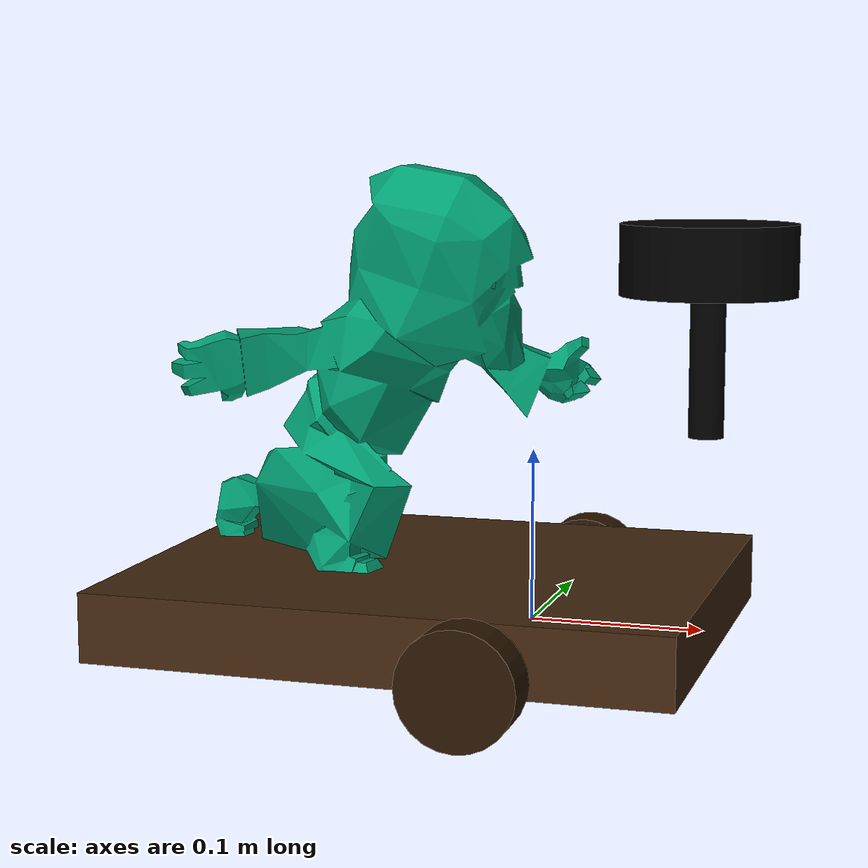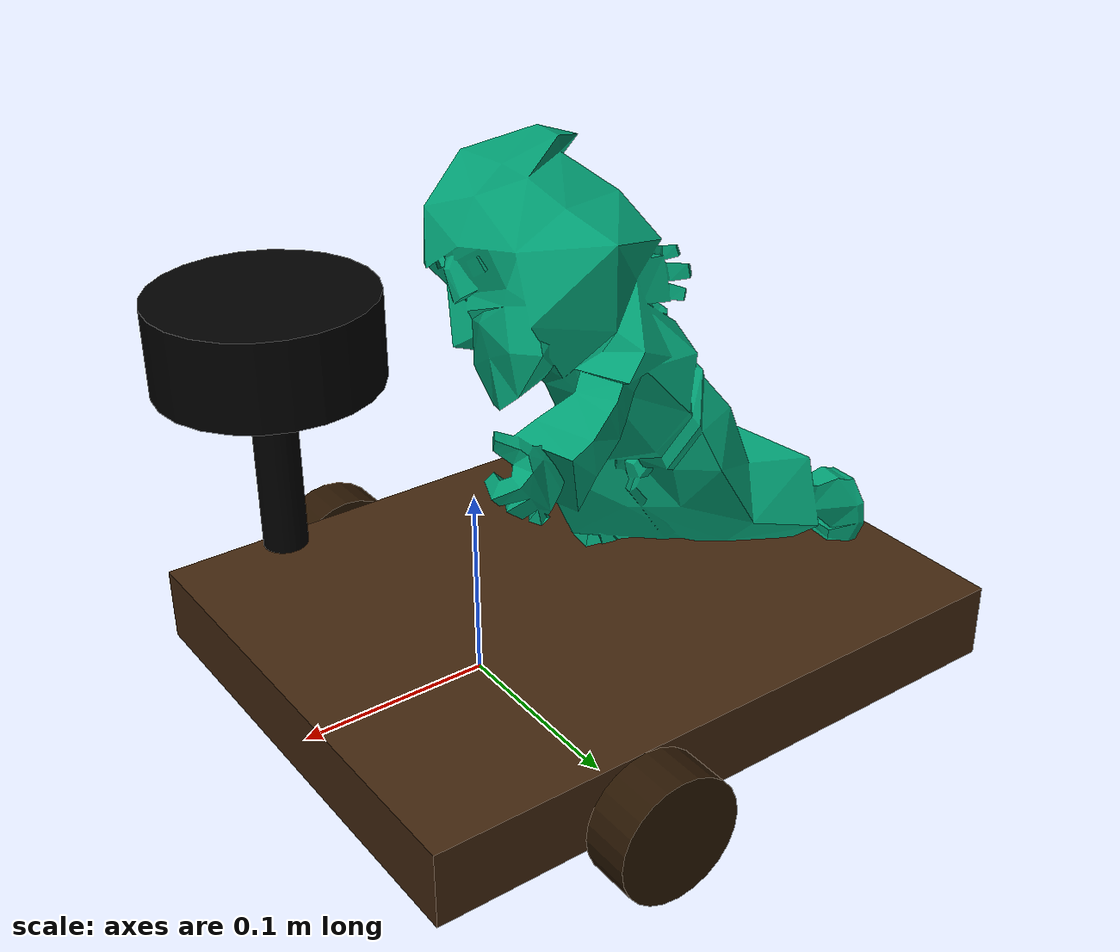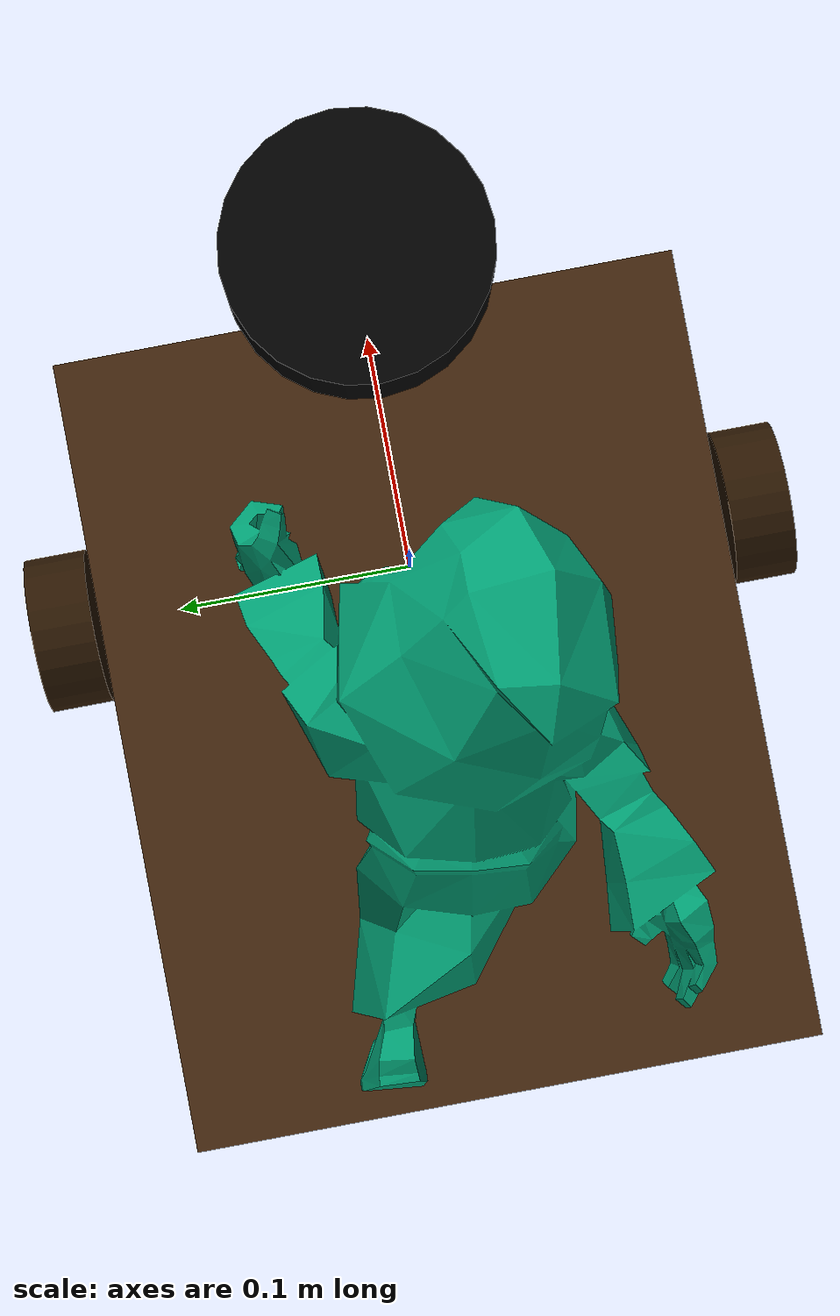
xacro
<?xml version="1.0" ?>
<robot name='robot' xmlns:xacro="http://ros.org/wiki/xacro">

    <!--xacro:include filename="$(find monk)/urdf/gazebo.urdf.xacro" /-->
    <!--xacro:include filename="$(find robot_description)/urdf/lidar.urdf.xacro" /-->
    <!--xacro:include filename="$(find robot_description)/urdf/depth.urdf.xacro" /-->

    <xacro:property name="chassis_length" value="0.335"/>
    <xacro:property name="chassis_width" value="0.265"/>
    <xacro:property name="chassis_height" value="0.04"/>
    <xacro:property name="wheel_radius" value="0.033"/>
    <xacro:property name="wheel_thickness" value="0.026"/>
    <xacro:property name="wheel_mass" value="0.05"/>
    <xacro:property name="wheel_offset_x" value="0.226"/>
    <xacro:property name="wheel_offset_y" value="0.1485"/>
    <xacro:property name="wheel_offset_z" value="0.01"/>
    <xacro:property name="caster_wheel_radius" value="0.03"/>
    <xacro:property name="caster_wheel_mass" value="0.01"/>
    <xacro:property name="caster_wheel_offset_x" value="0.075"/>
    <xacro:property name="caster_wheel_offset_z" value="${wheel_offset_z - wheel_radius + caster_wheel_radius}"/>
    <xacro:property name="mass" value="1.0"/>

    <xacro:property name="monk_mass" value="0.01"/>
    <xacro:property name="monk_radius" value="0.05"/>
    <xacro:property name="monk_height" value="0.2"/>

    <gazebo>
        <plugin
            filename="gz-sim-joint-state-publisher-system"
            name="gz::sim::systems::JointStatePublisher">
        </plugin>

        <plugin
            filename="gz-sim-diff-drive-system"
            name="gz::sim::systems::DiffDrive">
            <left_joint>left_wheel_joint</left_joint>
            <right_joint>right_wheel_joint</right_joint>
            <child_frame_id>robot/base_link</child_frame_id>
            <wheel_separation>${2*wheel_offset_y}</wheel_separation>
            <wheel_radius>${wheel_radius}</wheel_radius>
            <odom_publish_frequency>10</odom_publish_frequency>
        </plugin>

        <plugin filename="gz-sim-sensors-system"
                name="gz::sim::systems::Sensors">
            <render_engine>ogre2</render_engine>
        </plugin>
    </gazebo>

    <material name="white">
        <color rgba="1 1 1 1" />
    </material>

    <material name="orange">
        <color rgba="1 0.3 0.1 1"/>
    </material>

    <material name="blue">
        <color rgba="0.2 0.2 1 1"/>
    </material>

    <material name="black">
        <color rgba="0 0 0 1"/>
    </material>

    <material name="red">
        <color rgba="1 0 0 1"/>
    </material>

    <material name="kor_1">
        <color rgba="${42/256} ${22/256} ${2/256} 1"/>
    </material>

    <material name="kor_2">
        <color rgba="${67/256} ${39/256} ${15/256} 1"/>
    </material>

    <link name="base_link">
    </link>

    <link name="base_footprint">
    </link>

    <link name="monk">
        <visual>
            <geometry>
                <!--mesh filename="$(find monk)/source/Sketchfab_2017_11_01_03_49_01.dae" scale="0.1 0.1 0.1"/-->
                <mesh filename="file:///home/evrey/ros2_ws/6/ex01/monk/source/Sketchfab_2017_11_01_03_49_01.dae" scale="0.2 0.2 0.2"/>
            </geometry>
            <origin rpy="0 0 0" xyz="0 0 0"/>
        </visual>
        <collision>
            <geometry>
                <mesh filename="file:///home/evrey/ros2_ws/6/ex01/monk/source/Sketchfab_2017_11_01_03_49_01.dae" scale="0.2 0.2 0.2"/>
            </geometry>
            <origin rpy="0 0 0" xyz="0 0 0"/>
        </collision>
        <inertial>
            <origin xyz="0 0 ${monk_height/2}" rpy="0 0 0"/>
            <mass value="${monk_mass}" />
            <inertia ixx="${(1/12) * monk_mass * (3*monk_radius*monk_radius + monk_height*monk_height)}" ixy="0.0" ixz="0.0"
                     iyy="${(1/12) * monk_mass * (3*monk_radius*monk_radius + monk_height*monk_height)}" iyz="0.0"
                     izz="${(1/2) * monk_mass * (monk_radius*monk_radius)}" />
        </inertial>
    </link>

    <joint name="monk_joint" type="fixed">
        <parent link="base_link"/>
        <child link="monk"/>
        <origin xyz="${- chassis_length / 3} 0 ${chassis_height - wheel_offset_z - 0.01}" rpy="0 0 ${pi/2}"/>
    </joint>

    <joint name="base_footprint_joint" type="fixed">
        <parent link="base_link"/>
        <child link="base_footprint"/>
        <origin xyz="0 0 ${-chassis_height}" rpy="0 0 0"/>
    </joint>

    <joint name="chassis_joint" type="fixed">
        <parent link="base_link"/>
        <child link="chassis"/>
        <origin xyz="${-wheel_offset_x} 0 ${-wheel_offset_z}"/>
    </joint>

    <link name='chassis'>

        <inertial>
            <origin xyz="${chassis_length/2} 0 ${chassis_height/2}" rpy="0 0 0"/>
            <mass value="${mass}" />
            <inertia ixx="${(1/12) * mass * (chassis_width*chassis_width+chassis_height*chassis_height)}" ixy="0.0" ixz="0.0"
                     iyy="${(1/12) * mass * (chassis_length*chassis_length+chassis_height*chassis_height)}" iyz="0.0"
                     izz="${(1/12) * mass * (chassis_length*chassis_length+chassis_width*chassis_width)}" />
        </inertial>
        <visual>
            <origin xyz="${chassis_length/2} 0 ${chassis_height/2}"/>
            <geometry>
                <box size="${chassis_length} ${chassis_width} ${chassis_height}"/>
            </geometry>
            <material name="kor_2"/>
        </visual>
        <collision>
            <origin xyz="${chassis_length/2} 0 ${chassis_height/2}"/>
            <geometry>
                <box size="${chassis_length} ${chassis_width} ${chassis_height}"/>
            </geometry>
        </collision>

    </link>

    <gazebo reference="chassis">
        <material>Gazebo/Orange</material>
    </gazebo>

    <joint name="left_wheel_joint" type="continuous">
        <parent link="base_link"/>
        <child link="left_wheel"/>
        <origin xyz="0 ${wheel_offset_y} 0" rpy="-${pi/2} 0 0" />
        <axis xyz="0 0 1"/>
    </joint>

    <link name="left_wheel">
        <visual>
            <geometry>
                <cylinder radius="${wheel_radius}" length="${wheel_thickness}"/>
            </geometry>
            <material name="kor_1"/>
        </visual>
        <collision>
            <geometry>
                <sphere radius="${wheel_radius}"/>
            </geometry>
        </collision>
        <inertial>
            <origin xyz="0 0 0" rpy="0 0 0"/>
            <mass value="${wheel_mass}" />
            <inertia ixx="${(1/12) * wheel_mass * (3*wheel_radius*wheel_radius + wheel_thickness*wheel_thickness)}" ixy="0.0" ixz="0.0"
                     iyy="${(1/12) * wheel_mass * (3*wheel_radius*wheel_radius + wheel_thickness*wheel_thickness)}" iyz="0.0"
                     izz="${(1/2) * wheel_mass * (wheel_radius*wheel_radius)}" />
        </inertial>
    </link>

    <gazebo reference="left_wheel">
        <material>Gazebo/Blue</material>
    </gazebo>

    <joint name="right_wheel_joint" type="continuous">
        <parent link="base_link"/>
        <child link="right_wheel"/>
        <origin xyz="0 ${-wheel_offset_y} 0" rpy="${pi/2} 0 0" />
        <axis xyz="0 0 -1"/>
    </joint>

    <link name="right_wheel">
        <visual>
            <geometry>
                <cylinder radius="${wheel_radius}" length="${wheel_thickness}"/>
            </geometry>
            <material name="kor_1"/>
        </visual>
        <collision>
            <geometry>
                <sphere radius="${wheel_radius}"/>
            </geometry>
        </collision>
        <inertial>
            <origin xyz="0 0 0" rpy="0 0 0"/>
            <mass value="${wheel_mass}" />
            <inertia ixx="${(1/12) * wheel_mass * (3*wheel_radius*wheel_radius + wheel_thickness*wheel_thickness)}" ixy="0.0" ixz="0.0"
                     iyy="${(1/12) * wheel_mass * (3*wheel_radius*wheel_radius + wheel_thickness*wheel_thickness)}" iyz="0.0"
                     izz="${(1/2) * wheel_mass * (wheel_radius*wheel_radius)}" />
        </inertial>
    </link>

    <gazebo reference="right_wheel">
        <material>Gazebo/Blue</material>
    </gazebo>

    <joint name="caster_wheel_joint" type="fixed">
        <parent link="chassis"/>
        <child link="caster_wheel"/>
        <origin xyz="${caster_wheel_offset_x} 0 ${caster_wheel_offset_z}"/>
    </joint>

    <link name="caster_wheel">
        <visual>
            <geometry>
                <sphere radius="${caster_wheel_radius}"/>
            </geometry>
            <material name="kor_1"/>
        </visual>
        <collision>
            <geometry>
                <sphere radius="${caster_wheel_radius}"/>
            </geometry>
        </collision>
        <inertial>
            <origin xyz="0 0 0" rpy="0 0 0"/>
            <mass value="${caster_wheel_mass}" />
            <inertia ixx="${(2/5) * caster_wheel_mass * (caster_wheel_radius*caster_wheel_radius)}" ixy="0.0" ixz="0.0"
                     iyy="${(2/5) * caster_wheel_mass * (caster_wheel_radius*caster_wheel_radius)}" iyz="0.0"
                     izz="${(2/5) * caster_wheel_mass * (caster_wheel_radius*caster_wheel_radius)}" />
        </inertial>
    </link>

    <gazebo reference="caster_wheel">
        <material>Gazebo/White</material>
        <mu1 value="0.001"/>
        <mu2 value="0.001"/>
    </gazebo>

    <joint name="laser_joint" type="fixed">
        <parent link="base_link"/>
        <child link="laser_frame"/>
        <origin xyz="0.1 0 0.212" rpy="0 0 0"/>
    </joint>

    <link name="laser_frame">
        <visual>
            <geometry>
                <cylinder radius="0.05" length="0.04"/>
            </geometry>
            <material name="black"/>
        </visual>
        <visual>
            <origin xyz="0 0 -0.05"/>
            <geometry>
                <cylinder radius="0.01" length="0.1"/>
            </geometry>
            <material name="black"/>
        </visual>
        <collision>
            <geometry>
                <cylinder radius="0.05" length="0.04"/>
            </geometry>
        </collision>
        <inertial>
            <origin xyz="0 0 0" rpy="0 0 0"/>
            <mass value="0.1" />
            <inertia ixx="${(1/12) * 0.1 * (3*0.05*0.05 + 0.04*0.04)}" ixy="0.0" ixz="0.0"
                     iyy="${(1/12) * 0.1 * (3*0.05*0.05 + 0.04*0.04)}" iyz="0.0"
                     izz="${(1/2) * 0.1 * (0.05*0.05)}" />
        </inertial>
    </link>

    <gazebo reference="laser_frame">
        <material>Gazebo/Black</material>

        <sensor name='laser_sensor_frame' type='gpu_lidar'>"
            <gz_frame_id>robot/laser_frame</gz_frame_id>
            <pose> 0 0 0 0 0 0 </pose>
            <visualize>true</visualize>
            <always_on>true</always_on>
            <update_rate>10</update_rate>
            <ray>
                <scan>
                    <horizontal>
                        <samples>360</samples>
                        <min_angle>-3.14</min_angle>
                        <max_angle>3.14</max_angle>
                    </horizontal>
                </scan>
                <range>
                    <min>0.3</min>
                    <max>12</max>
                </range>
                <noise>
                    <type>gaussian</type>
                    <mean>0.0</mean>
                    <stddev>0.007</stddev>
                </noise>
            </ray>
        </sensor>
    </gazebo>

</robot>
